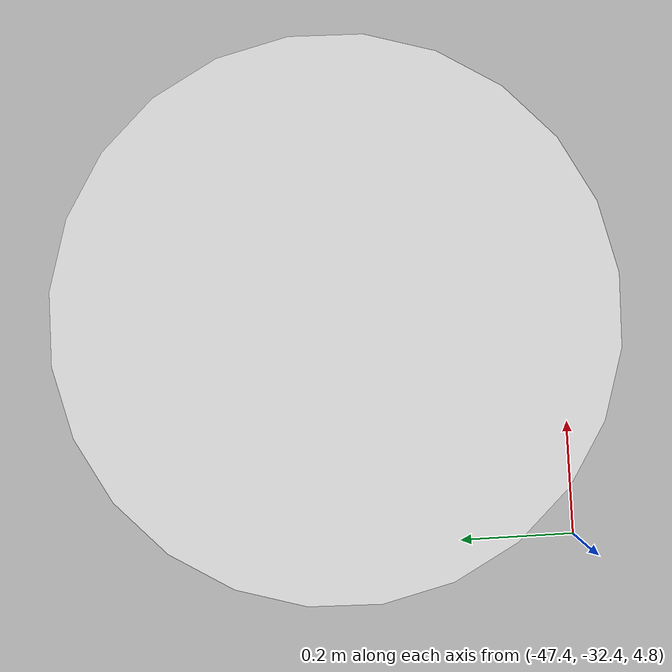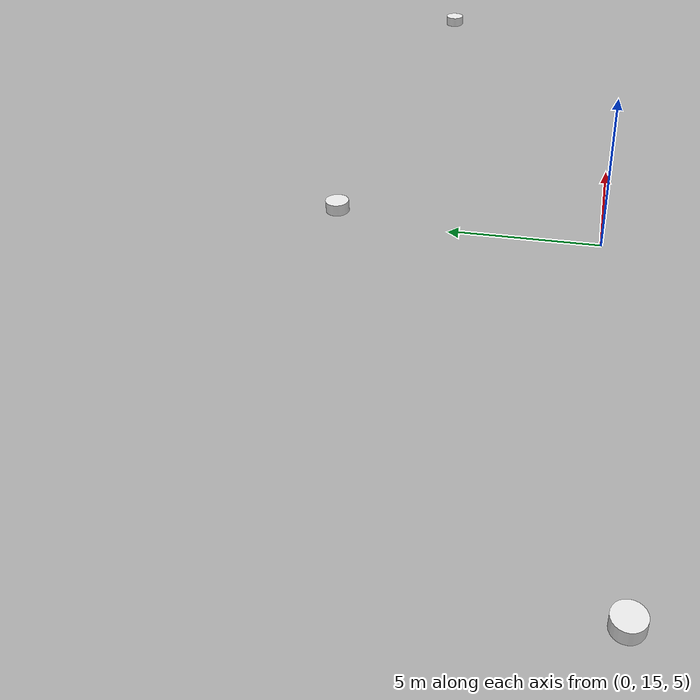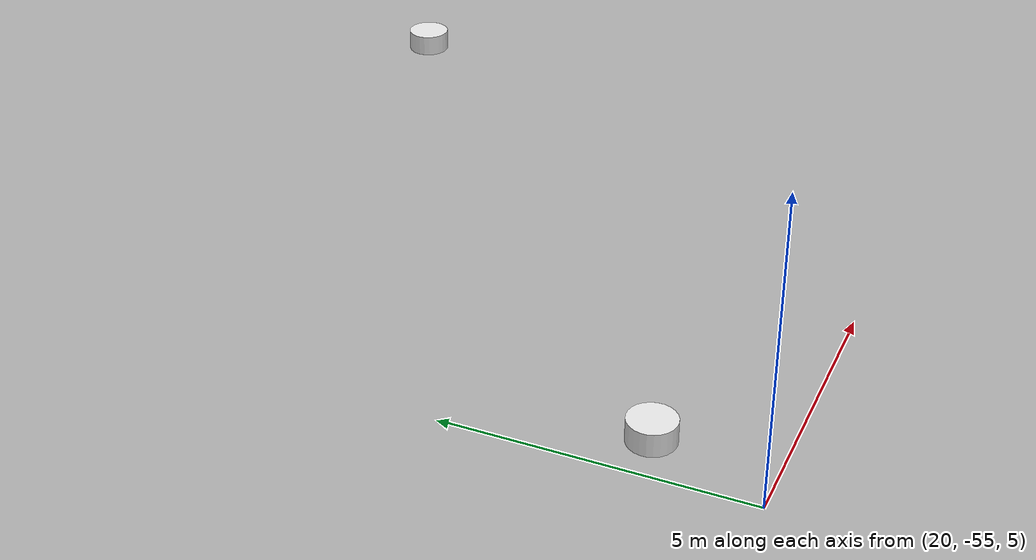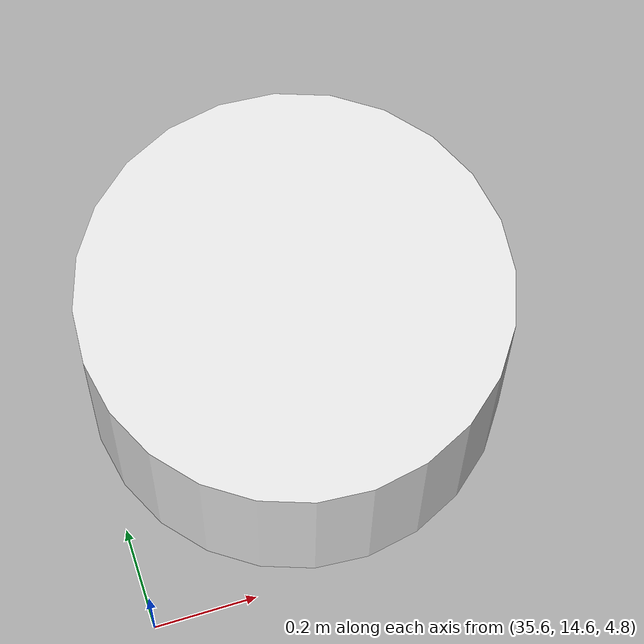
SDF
<sdf version="1.9">
 <world name="mars_sample_return">
  <physics type="ode">
   <max_step_size>0.01</max_step_size>
   <real_time_update_rate>500</real_time_update_rate>
  </physics>
  <server_config>
   <plugins>
    <plugin entity_name="*" entity_type="world" filename="ignition-gazebo-scene-broadcaster-system" name="ignition::gazebo::systems::SceneBroadcaster"/>
    <plugin entity_name="*" entity_type="world" filename="ignition-gazebo-sensors-system" name="ignition::gazebo::systems::Sensors">
     <render_engine>ogre2</render_engine>
    </plugin>
   </plugins>
  </server_config>
  <gravity>0 0 -3.72</gravity>
  <atmosphere type="adiabatic"/>
  <light type="directional" name="sun">
   <pose>0 0 10 0 0 0</pose>
   <diffuse>0.8 0.8 0.8 1</diffuse>
   <specular>0.2 0.2 0.2 1</specular>
   <attenuation>
    <range>1000</range>
    <constant>0.9</constant>
    <linear>0.01</linear>
    <quadratic>0.001</quadratic>
   </attenuation>
   <direction>-0.5 0.1 -0.9</direction>
  </light>
  <include><uri>model://sample_cache</uri><name>sample_cache-1</name><pose>20 0 5 0 0 9.78</pose></include>
  <include><uri>model://sample_cache</uri><name>sample_cache-2</name><pose>36 15 5 0 0 3.2</pose></include>
  <include><uri>model://sample_cache</uri><name>sample_cache-3</name><pose>-47 -32 5 0 0 4.82</pose></include>
  <include><uri>model://sample_cache</uri><name>sample_cache-4</name><pose>-14 14 5 0 0 3.42</pose></include>
  <include><uri>model://sample_cache</uri><name>sample_cache-5</name><pose>21 -53 5 0 0 0.15</pose></include>
  <include><uri>model://sample_cache</uri><name>sample_cache-6</name><pose>32 -44 5 0 0 4.67</pose></include>
  <include><uri>model://sample_cache</uri><name>sample_cache-7</name><pose>1 24 5 0 0 5.68</pose></include>
  <include><uri>model://sample_cache</uri><name>sample_cache-8</name><pose>20 23 5 0 0 6.10</pose></include>
 </world>
</sdf>

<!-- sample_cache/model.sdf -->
<sdf version="1.6">
  <model name="sample_cache">
    <static>false</static>
    <link name="body">
      <pose>0 0 0.05 0 0 0</pose>
      <collision name="collision">
      <inertial>
        <mass>1.0</mass>
        <inertia>
          <ixx>0.01</ixx>
          <iyy>0.01</iyy>
          <izz>0.01</izz>
          <ixy>0.0</ixy>
          <ixz>0.0</ixz>
          <iyz>0.0</iyz>
        </inertia>
      </inertial>
        <geometry>
          <cylinder>
            <radius>0.4</radius>
            <length>0.4</length>
          </cylinder>
        </geometry>
      </collision>
      <visual name="visual">
        <geometry>
          <cylinder>
            <radius>0.4</radius>
            <length>0.4</length>
          </cylinder>
        </geometry>
        <material>
          <ambient>0.7 0.7 0.7 1</ambient>
          <diffuse>0.9 0.9 0.9 1</diffuse>
          <specular>0.3 0.3 0.3 1</specular>
        </material>
        <surface>
          <bounce>
            <restitution_coefficient>0.7</restitution_coefficient>
            <threshold>1.0</threshold>
          </bounce>
        </surface>
      </visual>
    </link>
  </model>
</sdf>
